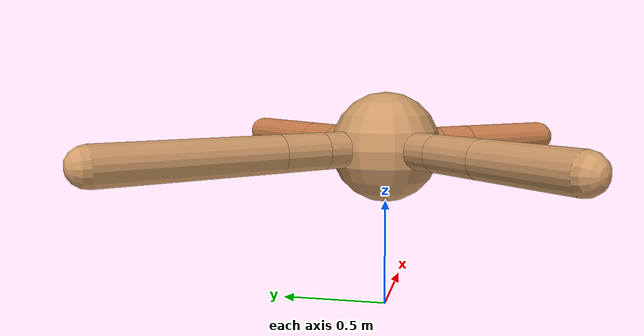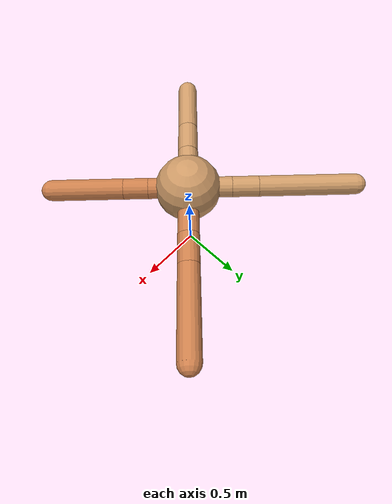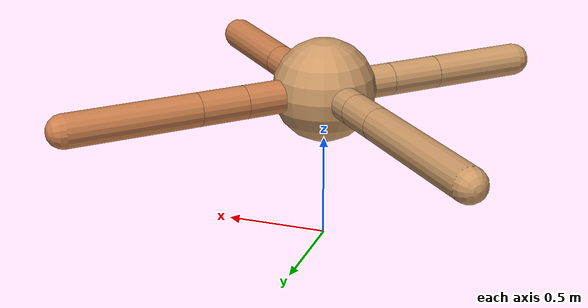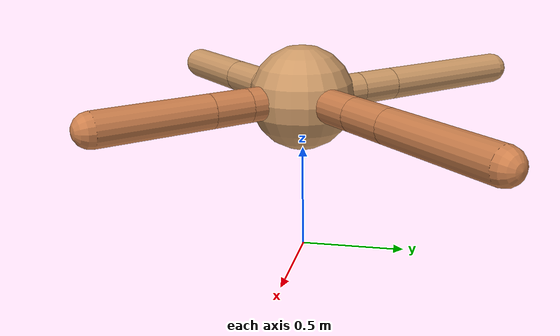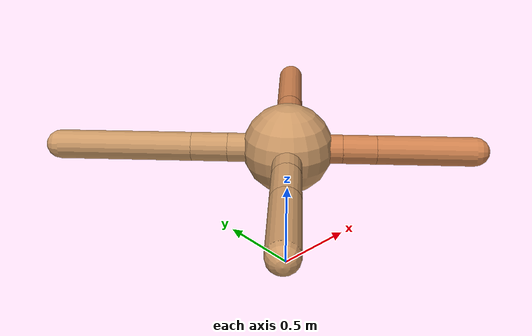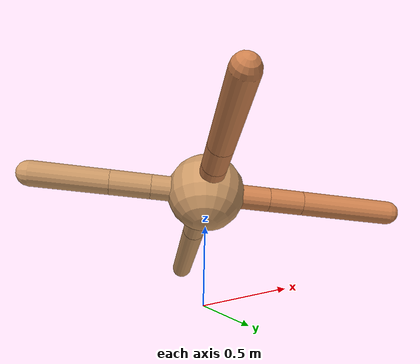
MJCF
<mujoco model="ant">
  <compiler angle="degree" coordinate="local" inertiafromgeom="true" />
  <option integrator="RK4" timestep="0.01" />
  <custom>
    <numeric data="0.0 0.0 0.55 1.0 0.0 0.0 0.0 0.0 1.0 0.0 -1.0 0.0 -1.0 0.0 1.0" name="init_qpos" />
  </custom>
  <default>
    <joint armature="1" damping="1" limited="true" />
    <geom conaffinity="0" condim="3" density="5.0" friction="1.5 0.1 0.1" margin="0.01" rgba="0.8 0.6 0.4 1" />
  </default>
  <worldbody>
    <body name="torso" pos="0 0 0.75">
      <geom name="torso_geom" pos="0 0 0" size="0.25" type="sphere" />

      <body name="front_left_leg" pos="0 0 0">
        <geom fromto="0.0 0.0 0.0 0.2933746391414074 0.2933746391414074 0.0" name="aux_1_geom" size="0.08" type="capsule" rgba=".8 .5 .3 1" />
        <body name="aux_1" pos="0.2933746391414074 0.2933746391414074 0.0">
          <joint axis="0 0 1" name="hip_1" pos="0.0 0.0 0.0" range="-40 40" type="hinge" />
          <geom fromto="0.0 0.0 0.0 0.1623665820513584 0.1623665820513584 0.0" name="left_leg_geom" size="0.08" type="capsule" rgba=".8 .5 .3 1" />
          <body pos="0.1623665820513584 0.1623665820513584 0.0" name="front_left_foot">
            <joint axis="-1 1 0" name="ankle_1" pos="0.0 0.0 0.0" range="30 100" type="hinge" />
            <geom fromto="0.0 0.0 0.0 0.4467079126638435 0.4467079126638435 0.0" name="left_ankle_geom" size="0.08" type="capsule" rgba=".8 .5 .3 1" />
          </body>
        </body>
      </body>
      <body name="front_right_leg" pos="0 0 0">
        <geom fromto="0.0 0.0 0.0 -0.2347341770111374 0.2347341770111374 0.0" name="aux_2_geom" size="0.08" type="capsule" />
        <body name="aux_2" pos="-0.2347341770111374 0.2347341770111374 0.0">
          <joint axis="0 0 1" name="hip_2" pos="0.0 0.0 0.0" range="-40 40" type="hinge" />
          <geom fromto="0.0 0.0 0.0 -0.14276157397643327 0.14276157397643327 0.0" name="right_leg_geom" size="0.08" type="capsule" />
          <body pos="-0.14276157397643327 0.14276157397643327 0.0" name="front_right_foot">
            <joint axis="1 1 0" name="ankle_2" pos="0.0 0.0 0.0" range="-100 -30" type="hinge" />
            <geom fromto="0.0 0.0 0.0 -0.5221378929144888 0.5221378929144888 0.0" name="right_ankle_geom" size="0.08" type="capsule" />
          </body>
        </body>
      </body>
      <body name="left_back_leg" pos="0 0 0">
        <geom fromto="0.0 0.0 0.0 -0.24993352332515517 -0.24993352332515517 0.0" name="aux_3_geom" size="0.08" type="capsule" />
        <body name="aux_3" pos="-0.24993352332515517 -0.24993352332515517 0.0">
          <joint axis="0 0 1" name="hip_3" pos="0.0 0.0 0.0" range="-40 40" type="hinge" />
          <geom fromto="0.0 0.0 0.0 -0.1792727833246422 -0.1792727833246422 0.0" name="back_leg_geom" size="0.08" type="capsule" />
          <body pos="-0.1792727833246422 -0.1792727833246422 0.0" name="left_back_foot">
            <joint axis="-1 1 0" name="ankle_3" pos="0.0 0.0 0.0" range="-100 -30" type="hinge" />
            <geom fromto="0.0 0.0 0.0 -0.33132356742646396 -0.33132356742646396 0.0" name="third_ankle_geom" size="0.08" type="capsule" />
          </body>
        </body>
      </body>
      <body name="right_back_leg" pos="0 0 0">
        <geom fromto="0.0 0.0 0.0 0.212380323028712 -0.212380323028712 0.0" name="aux_4_geom" size="0.08" type="capsule" rgba=".8 .5 .3 1" />
        <body name="aux_4" pos="0.212380323028712 -0.212380323028712 0.0">
          <joint axis="0 0 1" name="hip_4" pos="0.0 0.0 0.0" range="-40 40" type="hinge" />
          <geom fromto="0.0 0.0 0.0 0.13134490226610182 -0.13134490226610182 0.0" name="rightback_leg_geom" size="0.08" type="capsule" rgba=".8 .5 .3 1" />
          <body pos="0.13134490226610182 -0.13134490226610182 0.0" name="right_back_foot">
            <joint axis="1 1 0" name="ankle_4" pos="0.0 0.0 0.0" range="30 100" type="hinge" />
            <geom fromto="0.0 0.0 0.0 0.37997408055371384 -0.37997408055371384 0.0" name="fourth_ankle_geom" size="0.08" type="capsule" rgba=".8 .5 .3 1" />
          </body>
        </body>
      </body>
    </body>
  </worldbody>
  <actuator>
    <motor ctrllimited="true" ctrlrange="-1.0 1.0" joint="hip_4" gear="150" />
    <motor ctrllimited="true" ctrlrange="-1.0 1.0" joint="ankle_4" gear="150" />
    <motor ctrllimited="true" ctrlrange="-1.0 1.0" joint="hip_1" gear="150" />
    <motor ctrllimited="true" ctrlrange="-1.0 1.0" joint="ankle_1" gear="150" />
    <motor ctrllimited="true" ctrlrange="-1.0 1.0" joint="hip_2" gear="150" />
    <motor ctrllimited="true" ctrlrange="-1.0 1.0" joint="ankle_2" gear="150" />
    <motor ctrllimited="true" ctrlrange="-1.0 1.0" joint="hip_3" gear="150" />
    <motor ctrllimited="true" ctrlrange="-1.0 1.0" joint="ankle_3" gear="150" />
  </actuator>
</mujoco>
